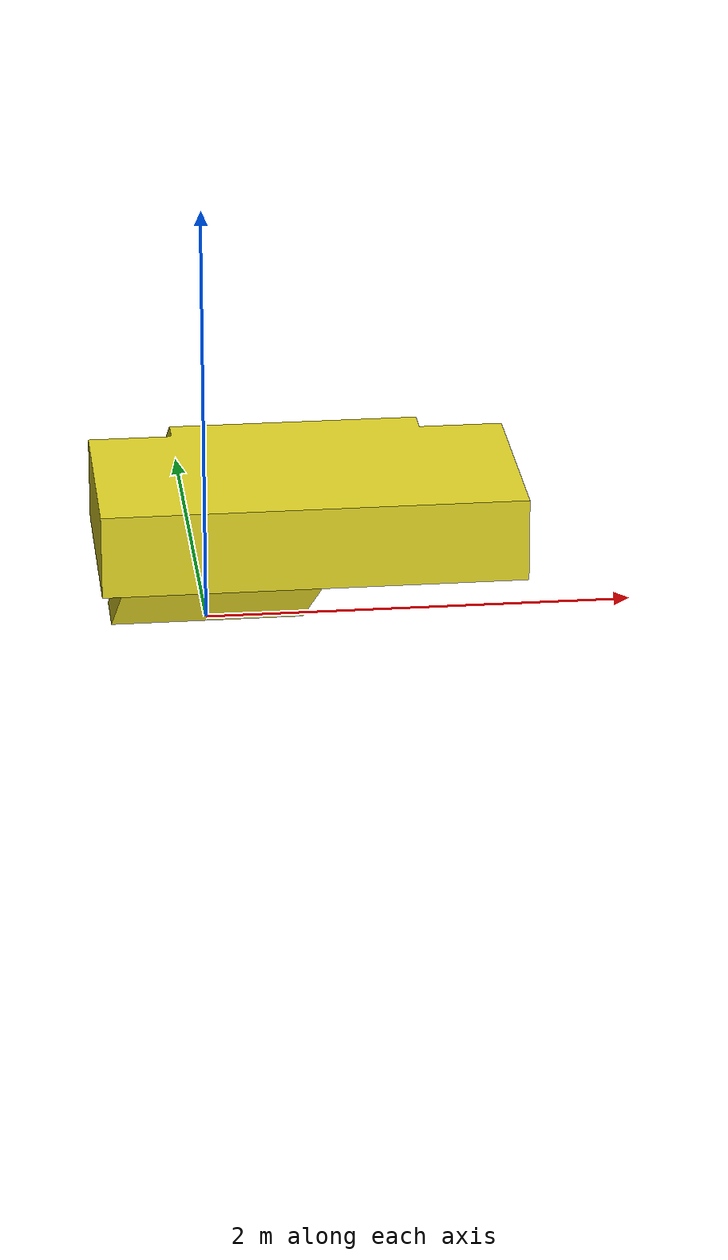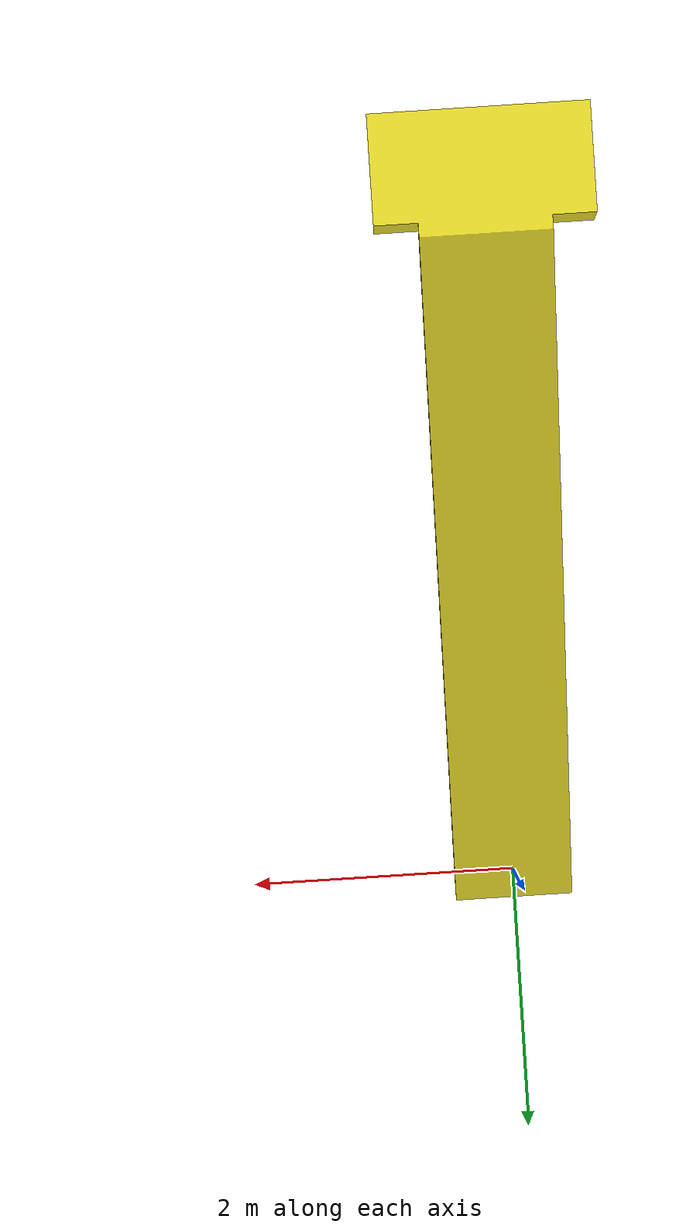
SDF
<?xml version="1.0" encoding="utf-8"?>
<sdf version='1.7'>
  <model name='stairs'>
    <static>true</static>
    <link name='base_link'>
      <inertial>
        <pose>-1.5939E-14 -3.0532 1.8301 0 0 0</pose>
        <mass>926.96</mass>
        <inertia>
          <ixx>5747.3</ixx>
          <ixy>-3.7391E-14</ixy>
          <ixz>-2.1153E-14</ixz>
          <iyy>611.9</iyy>
          <iyz>2485.9</iyz>
          <izz>4480.6</izz>
        </inertia>
      </inertial>
      <collision name='base_link_collision'>
        <pose>0 0 0 0 -0 0</pose>
        <geometry>
          <mesh>
            <scale>0.75 0.75 0.75</scale>
            <uri>model://stairs/meshes/collision_1.STL</uri>
          </mesh>
        </geometry>
      </collision>
      <visual name='base_link_visual'>
        <pose>0 0 0 0 -0 0</pose>
        <geometry>
          <mesh>
            <scale>0.75 0.75 0.75</scale>
            <uri>model://stairs/meshes/visual.STL</uri>
          </mesh>
        </geometry>
        <material>
          <script>
            <name>Gazebo/Yellow</name>
            <uri>file://media/materials/scripts/gazebo.material</uri>
          </script>
        </material>
      </visual>
    </link>
  </model>
</sdf>
